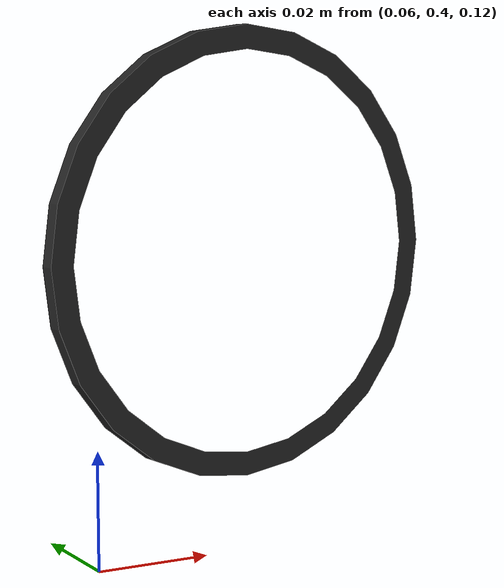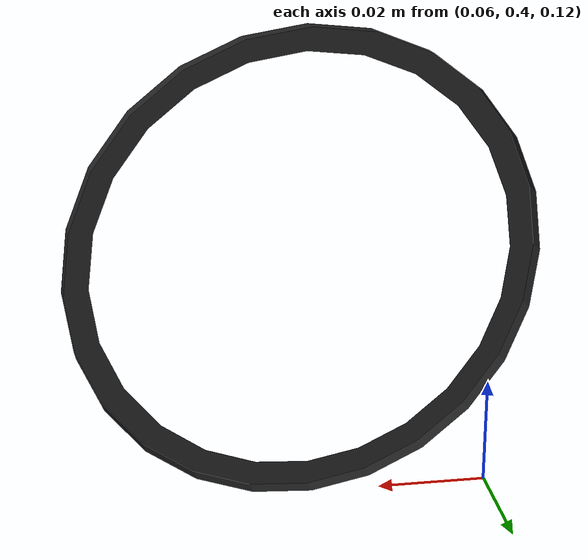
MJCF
<mujoco model="original-21">
  <default>
    <default class="visual">
      <geom group="2" type="mesh" contype="0" conaffinity="0"/>
    </default>
    <default class="collision">
      <geom group="3" type="mesh"/>
    </default>
  </default>
  <asset>
    <material name="material_0_0" specular="0.06666666666666667" shininess="0.03" rgba="0.13333333333333333 0.13333333333333333 0.13333333333333333 1"/>
    <mesh file="original-21.obj"/>
  </asset>
  <worldbody>
    <body name="original-21">
      <geom material="material_0_0" mesh="original-21" class="visual"/>
      <geom mesh="original-21" class="collision"/>
    </body>
  </worldbody>
</mujoco>
